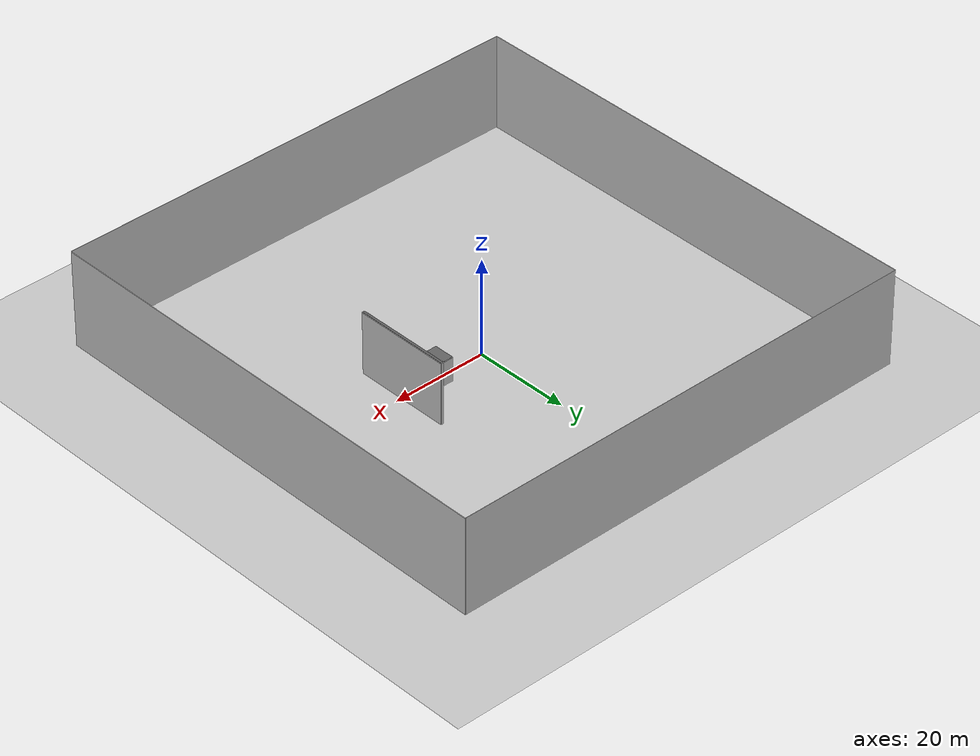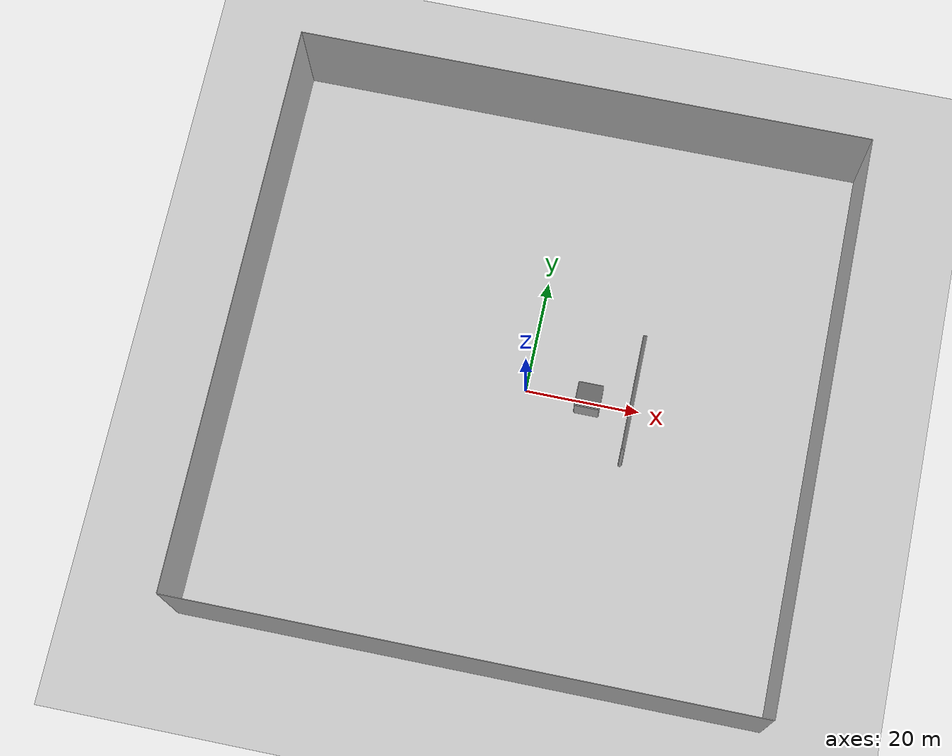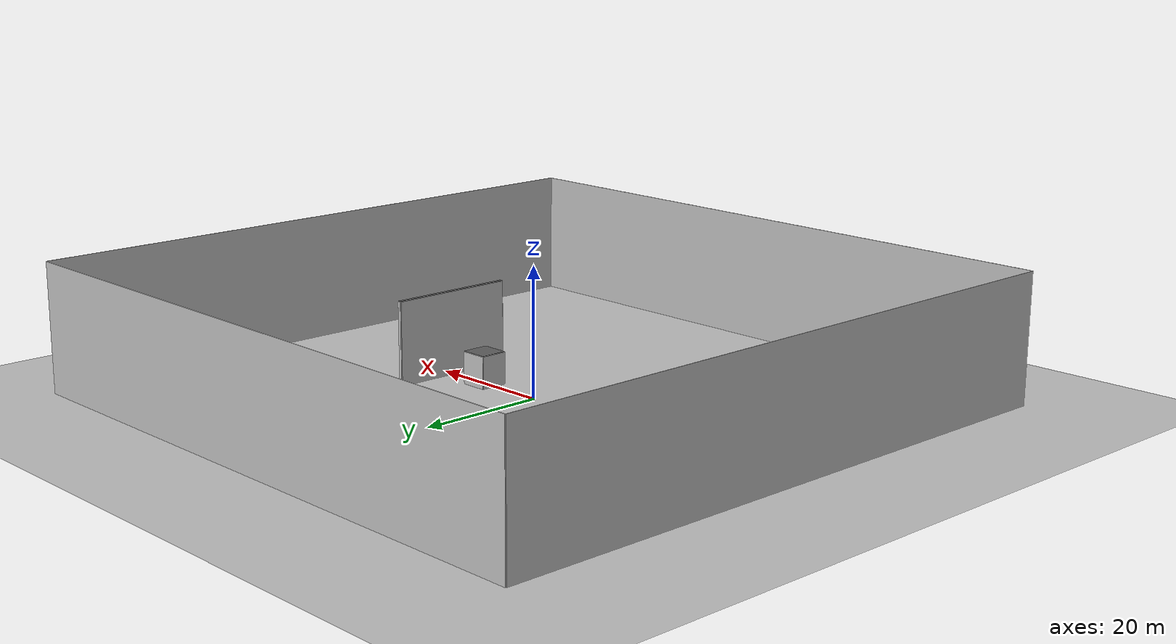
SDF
<sdf version='1.6'>
  <world name='default'>
    <light name='sun' type='directional'>
      <cast_shadows>1</cast_shadows>
      <pose frame=''>0 0 10 0 -0 0</pose>
      <diffuse>0.8 0.8 0.8 1</diffuse>
      <specular>0.2 0.2 0.2 1</specular>
      <attenuation>
        <range>1000</range>
        <constant>0.9</constant>
        <linear>0.01</linear>
        <quadratic>0.001</quadratic>
      </attenuation>
      <direction>-0.5 0.1 -0.9</direction>
    </light>
    <model name='ground_plane'>
      <static>true</static>
      <link name='link'>
        <collision name='collision'>
          <geometry>
            <plane>
              <normal>0 0 1</normal>
              <size>100 100</size>
            </plane>
          </geometry>
          <surface>
              <friction>
                <ode>
                  <mu>100</mu>
                  <mu2>50</mu2>
                </ode>
              </friction>
          </surface>
        </collision>
        <visual name='visual'>
          <cast_shadows>false</cast_shadows>
          <geometry>
            <plane>
              <normal>0 0 1</normal>
              <size>100 100</size>
            </plane>
          </geometry>
          <material>
            <script>
              <uri>file://media/materials/scripts/gazebo.material</uri>
              <name>Gazebo/Grey</name>
            </script>
          </material>
        </visual>
      </link>
    </model>
    <plugin name="ros_interface_plugin" filename="librotors_gazebo_ros_interface_plugin.so"/>

    <spherical_coordinates>
      <surface_model>EARTH_WGS84</surface_model>
      <latitude_deg>50.0885311</latitude_deg>
      <longitude_deg>14.4041669</longitude_deg>
      <elevation>200.0</elevation>
      <heading_deg>0</heading_deg>
    </spherical_coordinates>
    <gravity>0 0 -9.8</gravity>
    <physics type='ode'>
      <ode>
        <solver>
          <type>quick</type>
          <iters>1000</iters>
          <sor>1.3</sor>
        </solver>
        <constraints>
          <cfm>0</cfm>
          <erp>0.2</erp>
          <contact_max_correcting_vel>100</contact_max_correcting_vel>
          <contact_surface_layer>0.001</contact_surface_layer>
        </constraints>
      </ode>
      <max_step_size>0.01</max_step_size>
      <real_time_factor>1</real_time_factor>
      <real_time_update_rate>100</real_time_update_rate>
    </physics>
    <model name='upper_face_of_box_box_0'>
      <static>true</static>
      <pose>11.0 0.0 5.05 0.0 0.0 0</pose>
      <link name='link'>
        <collision name='collision'>
          <geometry>
            <box>
              <size>4.24 4.24 0.1</size>
            </box>
          </geometry>
          <surface>
              <friction>
                <ode>
                  <mu>100</mu>
                  <mu2>50</mu2>
                </ode>
              </friction>
          </surface>
        </collision>
        <visual name='visual'>
          <cast_shadows>false</cast_shadows>
          <geometry>
            <box>
              <size>4.24 4.24 0.1</size>
            </box>
          </geometry>
          <material>
                        <ambient>0.4 0.4 0.4 1</ambient>
            <diffuse>0.4 0.4 0.4 1</diffuse>
          </material>
        </visual>
        <gravity>false</gravity>
      </link>
    </model>
    <model name='front_face_of_box_box_0'>
      <static>true</static>
      <pose>11.0 -2.17 2.5 0.0 0.0 1.5707963267948966</pose>
      <link name='link'>
        <collision name='collision'>
          <geometry>
            <box>
              <size>0.1 4.24 5</size>
            </box>
          </geometry>
          <surface>
              <friction>
                <ode>
                  <mu>100</mu>
                  <mu2>50</mu2>
                </ode>
              </friction>
          </surface>
        </collision>
        <visual name='visual'>
          <cast_shadows>false</cast_shadows>
          <geometry>
            <box>
              <size>0.1 4.24 5</size>
            </box>
          </geometry>
          <material>
                        <script>
                <uri>/home/patik/Diplomka/dp_ws/src/helper_pkg/src/helper_pkg/../../../pesat_resources/worlds/base_dynamic_world/scripts</uri>
                <uri>/home/patik/Diplomka/dp_ws/src/helper_pkg/src/helper_pkg/../../../pesat_resources/textures</uri>
                <name>vrc/majors_box_0</name>
            </script>
          </material>
        </visual>
        <gravity>false</gravity>
      </link>
    </model>
    <model name='back_face_of_box_box_0'>
      <static>true</static>
      <pose>11.0 2.17 2.5 0.0 0.0 1.5707963267948966</pose>
      <link name='link'>
        <collision name='collision'>
          <geometry>
            <box>
              <size>0.1 4.24 5</size>
            </box>
          </geometry>
          <surface>
              <friction>
                <ode>
                  <mu>100</mu>
                  <mu2>50</mu2>
                </ode>
              </friction>
          </surface>
        </collision>
        <visual name='visual'>
          <cast_shadows>false</cast_shadows>
          <geometry>
            <box>
              <size>0.1 4.24 5</size>
            </box>
          </geometry>
          <material>
                        <script>
                <uri>/home/patik/Diplomka/dp_ws/src/helper_pkg/src/helper_pkg/../../../pesat_resources/worlds/base_dynamic_world/scripts</uri>
                <uri>/home/patik/Diplomka/dp_ws/src/helper_pkg/src/helper_pkg/../../../pesat_resources/textures</uri>
                <name>vrc/majors_box_0</name>
            </script>
          </material>
        </visual>
        <gravity>false</gravity>
      </link>
    </model>
    <model name='left_face_of_box_box_0'>
      <static>true</static>
      <pose>8.829999999999998 0.0 2.5 0.0 0.0 1.5707963267948966</pose>
      <link name='link'>
        <collision name='collision'>
          <geometry>
            <box>
              <size>4.24 0.1 5</size>
            </box>
          </geometry>
          <surface>
              <friction>
                <ode>
                  <mu>100</mu>
                  <mu2>50</mu2>
                </ode>
              </friction>
          </surface>
        </collision>
        <visual name='visual'>
          <cast_shadows>false</cast_shadows>
          <geometry>
            <box>
              <size>4.24 0.1 5</size>
            </box>
          </geometry>
          <material>
                        <script>
                <uri>/home/patik/Diplomka/dp_ws/src/helper_pkg/src/helper_pkg/../../../pesat_resources/worlds/base_dynamic_world/scripts</uri>
                <uri>/home/patik/Diplomka/dp_ws/src/helper_pkg/src/helper_pkg/../../../pesat_resources/textures</uri>
                <name>vrc/minors_box_0</name>
            </script>
          </material>
        </visual>
        <gravity>false</gravity>
      </link>
    </model>
    <model name='right_face_of_box_box_0'>
      <static>true</static>
      <pose>13.170000000000002 0.0 2.5 0.0 0.0 1.5707963267948966</pose>
      <link name='link'>
        <collision name='collision'>
          <geometry>
            <box>
              <size>4.24 0.1 5</size>
            </box>
          </geometry>
          <surface>
              <friction>
                <ode>
                  <mu>100</mu>
                  <mu2>50</mu2>
                </ode>
              </friction>
          </surface>
        </collision>
        <visual name='visual'>
          <cast_shadows>false</cast_shadows>
          <geometry>
            <box>
              <size>4.24 0.1 5</size>
            </box>
          </geometry>
          <material>
                        <script>
                <uri>/home/patik/Diplomka/dp_ws/src/helper_pkg/src/helper_pkg/../../../pesat_resources/worlds/base_dynamic_world/scripts</uri>
                <uri>/home/patik/Diplomka/dp_ws/src/helper_pkg/src/helper_pkg/../../../pesat_resources/textures</uri>
                <name>vrc/minors_box_0</name>
            </script>
          </material>
        </visual>
        <gravity>false</gravity>
      </link>
    </model>
    <model name='upper_face_of_box_box_1'>
      <static>true</static>
      <pose>18.5 0.0 13.05 0.0 0.0 0.0</pose>
      <link name='link'>
        <collision name='collision'>
          <geometry>
            <box>
              <size>0.5 20 0.1</size>
            </box>
          </geometry>
          <surface>
              <friction>
                <ode>
                  <mu>100</mu>
                  <mu2>50</mu2>
                </ode>
              </friction>
          </surface>
        </collision>
        <visual name='visual'>
          <cast_shadows>false</cast_shadows>
          <geometry>
            <box>
              <size>0.5 20 0.1</size>
            </box>
          </geometry>
          <material>
                        <ambient>0.4 0.4 0.4 1</ambient>
            <diffuse>0.4 0.4 0.4 1</diffuse>
          </material>
        </visual>
        <gravity>false</gravity>
      </link>
    </model>
    <model name='front_face_of_box_box_1'>
      <static>true</static>
      <pose>18.5 -10.05 6.5 0.0 0.0 1.5707963267948966</pose>
      <link name='link'>
        <collision name='collision'>
          <geometry>
            <box>
              <size>0.1 0.5 13</size>
            </box>
          </geometry>
          <surface>
              <friction>
                <ode>
                  <mu>100</mu>
                  <mu2>50</mu2>
                </ode>
              </friction>
          </surface>
        </collision>
        <visual name='visual'>
          <cast_shadows>false</cast_shadows>
          <geometry>
            <box>
              <size>0.1 0.5 13</size>
            </box>
          </geometry>
          <material>
                        <script>
                <uri>/home/patik/Diplomka/dp_ws/src/helper_pkg/src/helper_pkg/../../../pesat_resources/worlds/base_dynamic_world/scripts</uri>
                <uri>/home/patik/Diplomka/dp_ws/src/helper_pkg/src/helper_pkg/../../../pesat_resources/textures</uri>
                <name>vrc/majors_box_1</name>
            </script>
          </material>
        </visual>
        <gravity>false</gravity>
      </link>
    </model>
    <model name='back_face_of_box_box_1'>
      <static>true</static>
      <pose>18.5 10.05 6.5 0.0 0.0 1.5707963267948966</pose>
      <link name='link'>
        <collision name='collision'>
          <geometry>
            <box>
              <size>0.1 0.5 13</size>
            </box>
          </geometry>
          <surface>
              <friction>
                <ode>
                  <mu>100</mu>
                  <mu2>50</mu2>
                </ode>
              </friction>
          </surface>
        </collision>
        <visual name='visual'>
          <cast_shadows>false</cast_shadows>
          <geometry>
            <box>
              <size>0.1 0.5 13</size>
            </box>
          </geometry>
          <material>
                        <script>
                <uri>/home/patik/Diplomka/dp_ws/src/helper_pkg/src/helper_pkg/../../../pesat_resources/worlds/base_dynamic_world/scripts</uri>
                <uri>/home/patik/Diplomka/dp_ws/src/helper_pkg/src/helper_pkg/../../../pesat_resources/textures</uri>
                <name>vrc/majors_box_1</name>
            </script>
          </material>
        </visual>
        <gravity>false</gravity>
      </link>
    </model>
    <model name='left_face_of_box_box_1'>
      <static>true</static>
      <pose>18.2 0.0 6.5 0.0 0.0 1.5707963267948966</pose>
      <link name='link'>
        <collision name='collision'>
          <geometry>
            <box>
              <size>20 0.1 13</size>
            </box>
          </geometry>
          <surface>
              <friction>
                <ode>
                  <mu>100</mu>
                  <mu2>50</mu2>
                </ode>
              </friction>
          </surface>
        </collision>
        <visual name='visual'>
          <cast_shadows>false</cast_shadows>
          <geometry>
            <box>
              <size>20 0.1 13</size>
            </box>
          </geometry>
          <material>
                        <script>
                <uri>/home/patik/Diplomka/dp_ws/src/helper_pkg/src/helper_pkg/../../../pesat_resources/worlds/base_dynamic_world/scripts</uri>
                <uri>/home/patik/Diplomka/dp_ws/src/helper_pkg/src/helper_pkg/../../../pesat_resources/textures</uri>
                <name>vrc/minors_box_1</name>
            </script>
          </material>
        </visual>
        <gravity>false</gravity>
      </link>
    </model>
    <model name='right_face_of_box_box_1'>
      <static>true</static>
      <pose>18.8 0.0 6.5 0.0 0.0 1.5707963267948966</pose>
      <link name='link'>
        <collision name='collision'>
          <geometry>
            <box>
              <size>20 0.1 13</size>
            </box>
          </geometry>
          <surface>
              <friction>
                <ode>
                  <mu>100</mu>
                  <mu2>50</mu2>
                </ode>
              </friction>
          </surface>
        </collision>
        <visual name='visual'>
          <cast_shadows>false</cast_shadows>
          <geometry>
            <box>
              <size>20 0.1 13</size>
            </box>
          </geometry>
          <material>
                        <script>
                <uri>/home/patik/Diplomka/dp_ws/src/helper_pkg/src/helper_pkg/../../../pesat_resources/worlds/base_dynamic_world/scripts</uri>
                <uri>/home/patik/Diplomka/dp_ws/src/helper_pkg/src/helper_pkg/../../../pesat_resources/textures</uri>
                <name>vrc/minors_box_1</name>
            </script>
          </material>
        </visual>
        <gravity>false</gravity>
      </link>
    </model>
    <model name='front_face_of_box_world_side'>
      <static>true</static>
      <pose>50.05 0 10.0 0.0 0.0 0.0</pose>
      <link name='link'>
        <collision name='collision'>
          <geometry>
            <box>
              <size>0.1 100 20</size>
            </box>
          </geometry>
          <surface>
              <friction>
                <ode>
                  <mu>100</mu>
                  <mu2>50</mu2>
                </ode>
              </friction>
          </surface>
        </collision>
        <visual name='visual'>
          <cast_shadows>false</cast_shadows>
          <geometry>
            <box>
              <size>0.1 100 20</size>
            </box>
          </geometry>
          <material>
                        <script>
                <uri>/home/patik/Diplomka/dp_ws/src/helper_pkg/src/helper_pkg/../../../pesat_resources/worlds/base_dynamic_world/scripts</uri>
                <uri>/home/patik/Diplomka/dp_ws/src/helper_pkg/src/helper_pkg/../../../pesat_resources/textures</uri>
                <name>vrc/majors_world_side</name>
            </script>
          </material>
        </visual>
        <gravity>false</gravity>
      </link>
    </model>
    <model name='back_face_of_box_world_side'>
      <static>true</static>
      <pose>-50.05 0 10.0 0.0 0.0 0.0</pose>
      <link name='link'>
        <collision name='collision'>
          <geometry>
            <box>
              <size>0.1 100 20</size>
            </box>
          </geometry>
          <surface>
              <friction>
                <ode>
                  <mu>100</mu>
                  <mu2>50</mu2>
                </ode>
              </friction>
          </surface>
        </collision>
        <visual name='visual'>
          <cast_shadows>false</cast_shadows>
          <geometry>
            <box>
              <size>0.1 100 20</size>
            </box>
          </geometry>
          <material>
                        <script>
                <uri>/home/patik/Diplomka/dp_ws/src/helper_pkg/src/helper_pkg/../../../pesat_resources/worlds/base_dynamic_world/scripts</uri>
                <uri>/home/patik/Diplomka/dp_ws/src/helper_pkg/src/helper_pkg/../../../pesat_resources/textures</uri>
                <name>vrc/majors_world_side</name>
            </script>
          </material>
        </visual>
        <gravity>false</gravity>
      </link>
    </model>
    <model name='left_face_of_box_world_side'>
      <static>true</static>
      <pose>0 -50.05 10.0 0.0 0.0 0.0</pose>
      <link name='link'>
        <collision name='collision'>
          <geometry>
            <box>
              <size>100 0.1 20</size>
            </box>
          </geometry>
          <surface>
              <friction>
                <ode>
                  <mu>100</mu>
                  <mu2>50</mu2>
                </ode>
              </friction>
          </surface>
        </collision>
        <visual name='visual'>
          <cast_shadows>false</cast_shadows>
          <geometry>
            <box>
              <size>100 0.1 20</size>
            </box>
          </geometry>
          <material>
                        <script>
                <uri>/home/patik/Diplomka/dp_ws/src/helper_pkg/src/helper_pkg/../../../pesat_resources/worlds/base_dynamic_world/scripts</uri>
                <uri>/home/patik/Diplomka/dp_ws/src/helper_pkg/src/helper_pkg/../../../pesat_resources/textures</uri>
                <name>vrc/minors_world_side</name>
            </script>
          </material>
        </visual>
        <gravity>false</gravity>
      </link>
    </model>
    <model name='right_face_of_box_world_side'>
      <static>true</static>
      <pose>0 50.05 10.0 0.0 0.0 0.0</pose>
      <link name='link'>
        <collision name='collision'>
          <geometry>
            <box>
              <size>100 0.1 20</size>
            </box>
          </geometry>
          <surface>
              <friction>
                <ode>
                  <mu>100</mu>
                  <mu2>50</mu2>
                </ode>
              </friction>
          </surface>
        </collision>
        <visual name='visual'>
          <cast_shadows>false</cast_shadows>
          <geometry>
            <box>
              <size>100 0.1 20</size>
            </box>
          </geometry>
          <material>
                        <script>
                <uri>/home/patik/Diplomka/dp_ws/src/helper_pkg/src/helper_pkg/../../../pesat_resources/worlds/base_dynamic_world/scripts</uri>
                <uri>/home/patik/Diplomka/dp_ws/src/helper_pkg/src/helper_pkg/../../../pesat_resources/textures</uri>
                <name>vrc/minors_world_side</name>
            </script>
          </material>
        </visual>
        <gravity>false</gravity>
      </link>
    </model>

    <plugin name='gazebo_octomap' filename='librotors_gazebo_octomap_plugin.so'/>
  </world>
</sdf>
